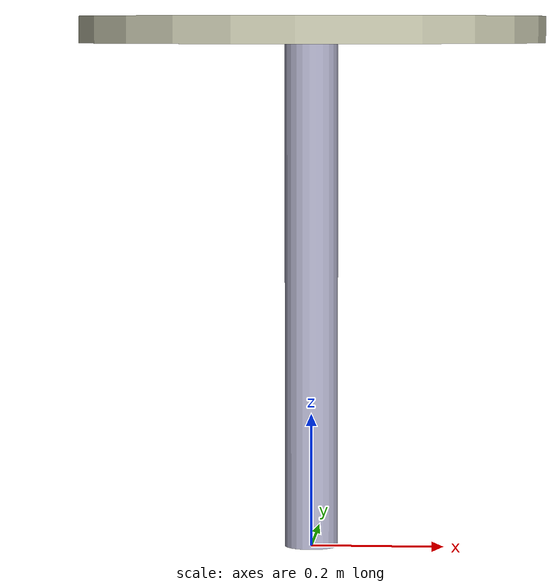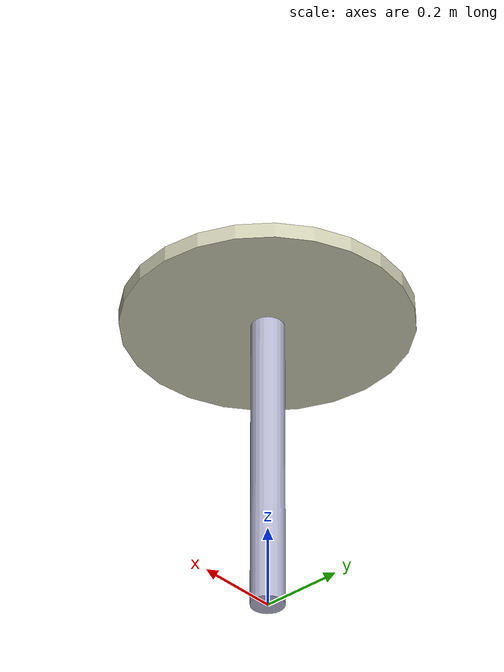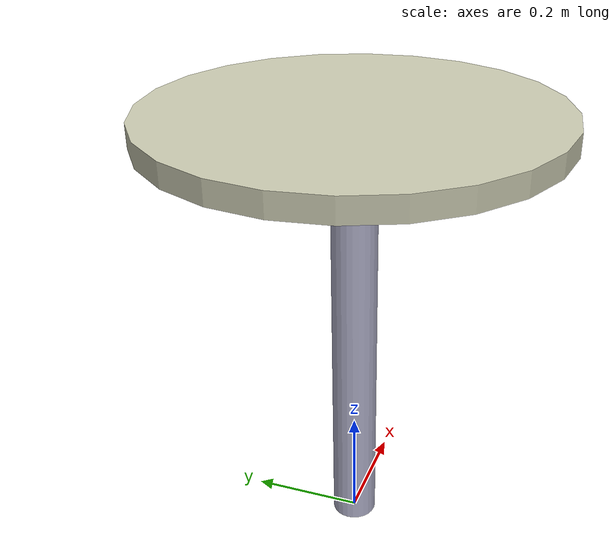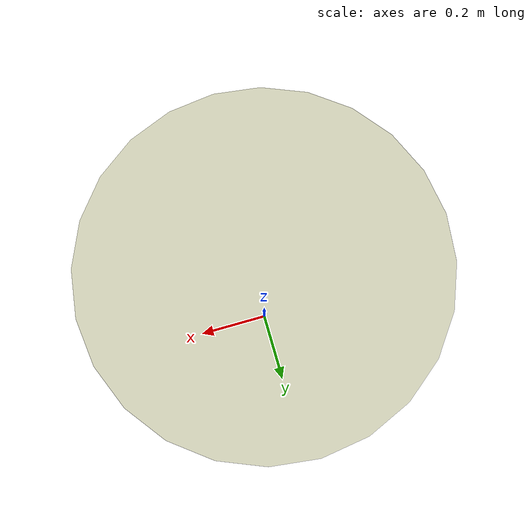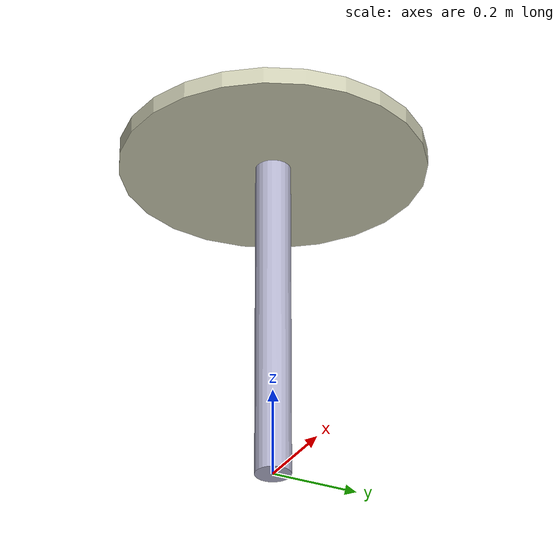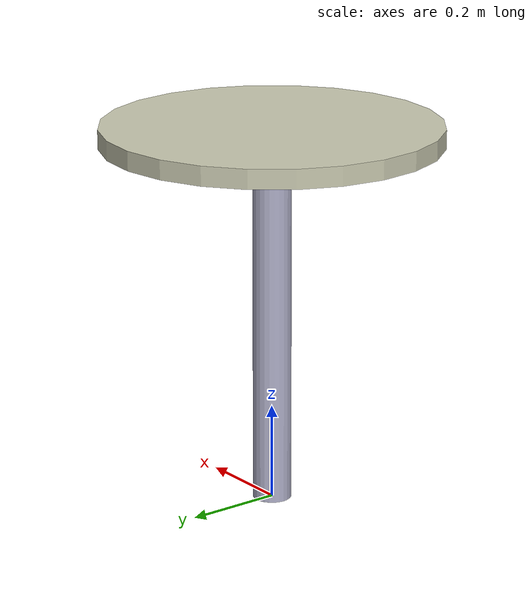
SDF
<?xml version='1.0'?>
<sdf version='1.6'>
  <model name='table'>
    <static>true</static>
    <link name='table_link'>
      <collision name='col_top'>
        <geometry><cylinder><radius>0.35</radius><length>0.04</length></cylinder></geometry>
        <pose>0 0 0.78 0 0 0</pose>
      </collision>
      <visual name='vis_top'>
        <geometry><cylinder><radius>0.35</radius><length>0.04</length></cylinder></geometry>
        <pose>0 0 0.78 0 0 0</pose>
        <material>
          <ambient>0.9 0.9 0.8 1</ambient>
          <diffuse>0.8 0.8 0.7 1</diffuse>
          <specular>0.1 0.1 0.1 1</specular>
        </material>
      </visual>
      <collision name='col_leg'>
        <geometry><cylinder><radius>0.04</radius><length>0.76</length></cylinder></geometry>
        <pose>0 0 0.38 0 0 0</pose>
      </collision>
      <visual name='vis_leg'>
        <geometry><cylinder><radius>0.04</radius><length>0.76</length></cylinder></geometry>
        <pose>0 0 0.38 0 0 0</pose>
        <material>
          <ambient>0.8 0.8 0.9 1</ambient>
          <diffuse>0.7 0.7 0.8 1</diffuse>
          <specular>0.9 0.9 0.9 1</specular>
        </material>
      </visual>
    </link>
  </model>
</sdf>
